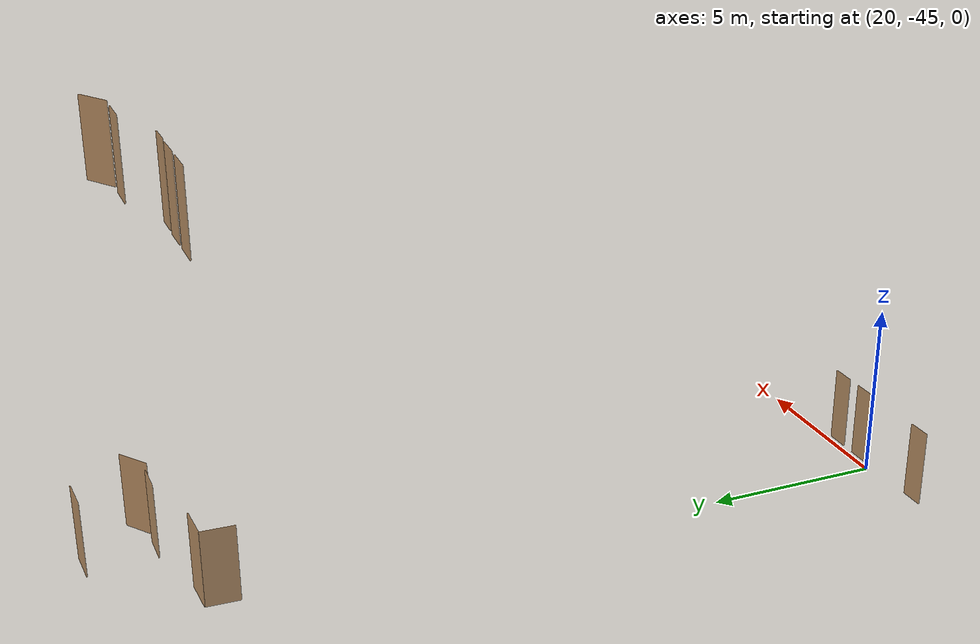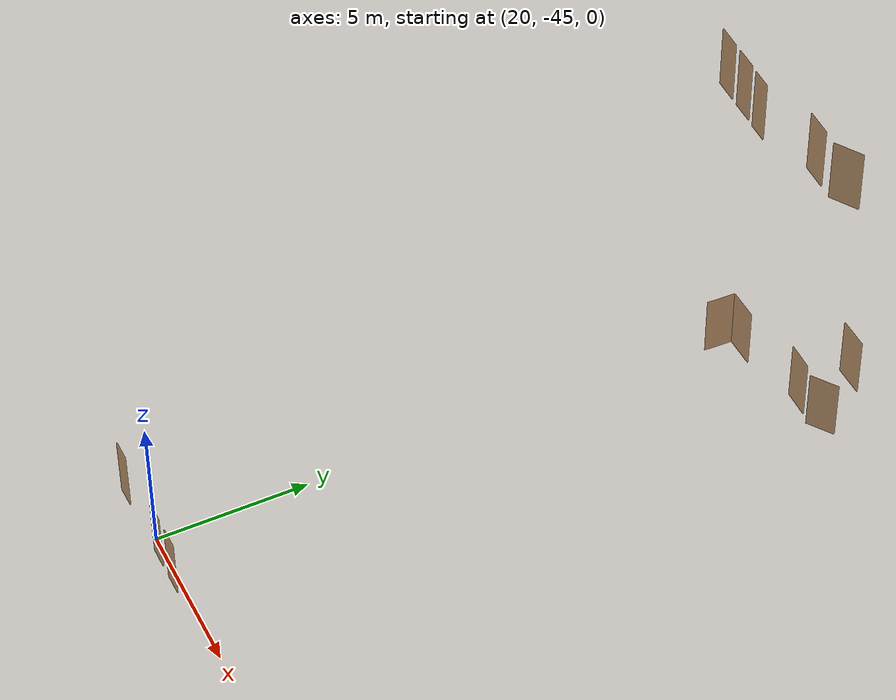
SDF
<sdf version="1.7">
 <world name="sim_world">
  <model name="part2_3">
   <pose>20.919621237898262 -25.424450441570542 0.0 0 0 -3.1088230642559003</pose>
   <link name="right">
    <pose>0 0 1.11 0 0 0</pose>
    <visual name="right_visual">
     <geometry><box><size>1.0312199456807118 0.03 2.2</size></box></geometry>
     <material>
      <ambient>0.5 0.25 0 0.6</ambient>
      <diffuse>0.5 0.25 0 0.6</diffuse>
      <pbr><metal><metalness>0.0</metalness></metal></pbr>
     </material>
    </visual>
    <collision name="right_collision">
     <geometry><box><size>1.0312199456807118 0.03 2.2</size></box></geometry>
     <surface><contact><collide_bitmask>0x02</collide_bitmask></contact></surface>
    </collision>
    <inertial>
     <mass>50.0</mass>
     <inertia><ixx>20.17041666666667</ixx><iyy>24.59756073487388</iyy><izz>4.434644068207209</izz></inertia>
    </inertial>
   </link>
   <joint name="right_joint" type="revolute">
    <parent>world</parent>
    <child>right</child>
    <axis><xyz>0 0 -1</xyz><limit><lower>0</lower><upper>1.57</upper></limit></axis>
    <pose>0.5206099728403559 0 0 0 0 0</pose>
   </joint>
   <plugin name="register_component" filename="libregister_component.so">
    <component name="Door">
     <v_max_door>0.5</v_max_door>
     <a_max_door>0.3</a_max_door>
     <a_nom_door>0.15</a_nom_door>
     <dx_min_door>0.01</dx_min_door>
     <f_max_door>500.0</f_max_door>
     <ros_interface>true</ros_interface>
     <door name="part2_3" type="SwingDoor" left_joint_name="empty_joint" right_joint_name="right_joint"/>
    </component>
   </plugin>
  </model>
  <model name="part2_2">
   <pose>20.38263480093005 -25.917791185768593 0.0 0 0 1.535839882828038</pose>
   <link name="right">
    <pose>0 0 1.11 0 0 0</pose>
    <visual name="right_visual">
     <geometry><box><size>0.9431495373669919 0.03 2.2</size></box></geometry>
     <material>
      <ambient>0.5 0.25 0 0.6</ambient>
      <diffuse>0.5 0.25 0 0.6</diffuse>
      <pbr><metal><metalness>0.0</metalness></metal></pbr>
     </material>
    </visual>
    <collision name="right_collision">
     <geometry><box><size>0.9431495373669919 0.03 2.2</size></box></geometry>
     <surface><contact><collide_bitmask>0x02</collide_bitmask></contact></surface>
    </collision>
    <inertial>
     <mass>50.0</mass>
     <inertia><ixx>20.17041666666667</ixx><iyy>23.87304604098155</iyy><izz>3.710129374314879</izz></inertia>
    </inertial>
   </link>
   <joint name="right_joint" type="revolute">
    <parent>world</parent>
    <child>right</child>
    <axis><xyz>0 0 1</xyz><limit><lower>0</lower><upper>1.57</upper></limit></axis>
    <pose>0.47657476868349596 0 0 0 0 0</pose>
   </joint>
   <plugin name="register_component" filename="libregister_component.so">
    <component name="Door">
     <v_max_door>0.5</v_max_door>
     <a_max_door>0.3</a_max_door>
     <a_nom_door>0.15</a_nom_door>
     <dx_min_door>0.01</dx_min_door>
     <f_max_door>500.0</f_max_door>
     <ros_interface>true</ros_interface>
     <door name="part2_2" type="SwingDoor" left_joint_name="empty_joint" right_joint_name="right_joint"/>
    </component>
   </plugin>
  </model>
  <model name="part2_6">
   <pose>23.62189937637335 -24.873600078663575 0.0 0 0 3.137896065827331</pose>
   <link name="right">
    <pose>0 0 1.11 0 0 0</pose>
    <visual name="right_visual">
     <geometry><box><size>0.9276185826104854 0.03 2.2</size></box></geometry>
     <material>
      <ambient>0.5 0.25 0 0.6</ambient>
      <diffuse>0.5 0.25 0 0.6</diffuse>
      <pbr><metal><metalness>0.0</metalness></metal></pbr>
     </material>
    </visual>
    <collision name="right_collision">
     <geometry><box><size>0.9276185826104854 0.03 2.2</size></box></geometry>
     <surface><contact><collide_bitmask>0x02</collide_bitmask></contact></surface>
    </collision>
    <inertial>
     <mass>50.0</mass>
     <inertia><ixx>20.17041666666667</ixx><iyy>23.751984311684527</iyy><izz>3.589067645017858</izz></inertia>
    </inertial>
   </link>
   <joint name="right_joint" type="revolute">
    <parent>world</parent>
    <child>right</child>
    <axis><xyz>0 0 1</xyz><limit><lower>0</lower><upper>1.57</upper></limit></axis>
    <pose>0.4688092913052427 0 0 0 0 0</pose>
   </joint>
   <plugin name="register_component" filename="libregister_component.so">
    <component name="Door">
     <v_max_door>0.5</v_max_door>
     <a_max_door>0.3</a_max_door>
     <a_nom_door>0.15</a_nom_door>
     <dx_min_door>0.01</dx_min_door>
     <f_max_door>500.0</f_max_door>
     <ros_interface>true</ros_interface>
     <door name="part2_6" type="SwingDoor" left_joint_name="empty_joint" right_joint_name="right_joint"/>
    </component>
   </plugin>
  </model>
  <model name="part2_5">
   <pose>23.49012789511284 -22.916034596184698 0.0 0 0 0.03134180106866015</pose>
   <link name="right">
    <pose>0 0 1.11 0 0 0</pose>
    <visual name="right_visual">
     <geometry><box><size>1.0320391962318292 0.03 2.2</size></box></geometry>
     <material>
      <ambient>0.5 0.25 0 0.6</ambient>
      <diffuse>0.5 0.25 0 0.6</diffuse>
      <pbr><metal><metalness>0.0</metalness></metal></pbr>
     </material>
    </visual>
    <collision name="right_collision">
     <geometry><box><size>1.0320391962318292 0.03 2.2</size></box></geometry>
     <surface><contact><collide_bitmask>0x02</collide_bitmask></contact></surface>
    </collision>
    <inertial>
     <mass>50.0</mass>
     <inertia><ixx>20.17041666666667</ixx><iyy>24.60460376066184</iyy><izz>4.441687093995166</izz></inertia>
    </inertial>
   </link>
   <joint name="right_joint" type="revolute">
    <parent>world</parent>
    <child>right</child>
    <axis><xyz>0 0 -1</xyz><limit><lower>0</lower><upper>1.57</upper></limit></axis>
    <pose>0.5210195981159146 0 0 0 0 0</pose>
   </joint>
   <plugin name="register_component" filename="libregister_component.so">
    <component name="Door">
     <v_max_door>0.5</v_max_door>
     <a_max_door>0.3</a_max_door>
     <a_nom_door>0.15</a_nom_door>
     <dx_min_door>0.01</dx_min_door>
     <f_max_door>500.0</f_max_door>
     <ros_interface>true</ros_interface>
     <door name="part2_5" type="SwingDoor" left_joint_name="empty_joint" right_joint_name="right_joint"/>
    </component>
   </plugin>
  </model>
  <model name="part2_7_end">
   <pose>24.838442831288784 -24.697043623681914 0.0 0 0 -2.519063830197608</pose>
   <link name="right">
    <pose>0 0 1.11 0 0 0</pose>
    <visual name="right_visual">
     <geometry><box><size>0.9834981706830346 0.03 2.2</size></box></geometry>
     <material>
      <ambient>0.5 0.25 0 0.6</ambient>
      <diffuse>0.5 0.25 0 0.6</diffuse>
      <pbr><metal><metalness>0.0</metalness></metal></pbr>
     </material>
    </visual>
    <collision name="right_collision">
     <geometry><box><size>0.9834981706830346 0.03 2.2</size></box></geometry>
     <surface><contact><collide_bitmask>0x02</collide_bitmask></contact></surface>
    </collision>
    <inertial>
     <mass>50.0</mass>
     <inertia><ixx>20.17041666666667</ixx><iyy>24.19695271557032</iyy><izz>4.034036048903648</izz></inertia>
    </inertial>
   </link>
   <joint name="right_joint" type="revolute">
    <parent>world</parent>
    <child>right</child>
    <axis><xyz>0 0 -1</xyz><limit><lower>0</lower><upper>1.57</upper></limit></axis>
    <pose>0.4967490853415173 0 0 0 0 0</pose>
   </joint>
   <plugin name="register_component" filename="libregister_component.so">
    <component name="Door">
     <v_max_door>0.5</v_max_door>
     <a_max_door>0.3</a_max_door>
     <a_nom_door>0.15</a_nom_door>
     <dx_min_door>0.01</dx_min_door>
     <f_max_door>500.0</f_max_door>
     <ros_interface>true</ros_interface>
     <door name="part2_7_end" type="SwingDoor" left_joint_name="empty_joint" right_joint_name="right_joint"/>
    </component>
   </plugin>
  </model>
  <model name="part6_3">
   <pose>21.833918270380313 -45.2030256453194 0.0 0 0 -3.141366388773305</pose>
   <link name="right">
    <pose>0 0 1.11 0 0 0</pose>
    <visual name="right_visual">
     <geometry><box><size>0.6991783408263198 0.03 2.2</size></box></geometry>
     <material>
      <ambient>0.5 0.25 0 0.6</ambient>
      <diffuse>0.5 0.25 0 0.6</diffuse>
      <pbr><metal><metalness>0.0</metalness></metal></pbr>
     </material>
    </visual>
    <collision name="right_collision">
     <geometry><box><size>0.6991783408263198 0.03 2.2</size></box></geometry>
     <surface><contact><collide_bitmask>0x02</collide_bitmask></contact></surface>
    </collision>
    <inertial>
     <mass>50.0</mass>
     <inertia><ixx>20.17041666666667</ixx><iyy>22.203543134502695</iyy><izz>2.040626467836023</izz></inertia>
    </inertial>
   </link>
   <joint name="right_joint" type="revolute">
    <parent>world</parent>
    <child>right</child>
    <axis><xyz>0 0 -1</xyz><limit><lower>0</lower><upper>1.57</upper></limit></axis>
    <pose>0.3545891704131599 0 0 0 0 0</pose>
   </joint>
   <plugin name="register_component" filename="libregister_component.so">
    <component name="Door">
     <v_max_door>0.5</v_max_door>
     <a_max_door>0.3</a_max_door>
     <a_nom_door>0.15</a_nom_door>
     <dx_min_door>0.01</dx_min_door>
     <f_max_door>500.0</f_max_door>
     <ros_interface>true</ros_interface>
     <door name="part6_3" type="SwingDoor" left_joint_name="empty_joint" right_joint_name="right_joint"/>
    </component>
   </plugin>
  </model>
  <model name="part6_1">
   <pose>18.052363985373013 -45.202496120370355 0.0 0 0 -3.1386166731971628</pose>
   <link name="right">
    <pose>0 0 1.11 0 0 0</pose>
    <visual name="right_visual">
     <geometry><box><size>0.7017328218687007 0.03 2.2</size></box></geometry>
     <material>
      <ambient>0.5 0.25 0 0.6</ambient>
      <diffuse>0.5 0.25 0 0.6</diffuse>
      <pbr><metal><metalness>0.0</metalness></metal></pbr>
     </material>
    </visual>
    <collision name="right_collision">
     <geometry><box><size>0.7017328218687007 0.03 2.2</size></box></geometry>
     <surface><contact><collide_bitmask>0x02</collide_bitmask></contact></surface>
    </collision>
    <inertial>
     <mass>50.0</mass>
     <inertia><ixx>20.17041666666667</ixx><iyy>22.218453972032545</iyy><izz>2.0555373053658736</izz></inertia>
    </inertial>
   </link>
   <joint name="right_joint" type="revolute">
    <parent>world</parent>
    <child>right</child>
    <axis><xyz>0 0 1</xyz><limit><lower>0</lower><upper>1.57</upper></limit></axis>
    <pose>0.35586641093435034 0 0 0 0 0</pose>
   </joint>
   <plugin name="register_component" filename="libregister_component.so">
    <component name="Door">
     <v_max_door>0.5</v_max_door>
     <a_max_door>0.3</a_max_door>
     <a_nom_door>0.15</a_nom_door>
     <dx_min_door>0.01</dx_min_door>
     <f_max_door>500.0</f_max_door>
     <ros_interface>true</ros_interface>
     <door name="part6_1" type="SwingDoor" left_joint_name="empty_joint" right_joint_name="right_joint"/>
    </component>
   </plugin>
  </model>
  <model name="part6_2">
   <pose>20.71829745689059 -45.20227147342227 0.0 0 0 3.139241365842667</pose>
   <link name="right">
    <pose>0 0 1.11 0 0 0</pose>
    <visual name="right_visual">
     <geometry><box><size>0.6997419019653975 0.03 2.2</size></box></geometry>
     <material>
      <ambient>0.5 0.25 0 0.6</ambient>
      <diffuse>0.5 0.25 0 0.6</diffuse>
      <pbr><metal><metalness>0.0</metalness></metal></pbr>
     </material>
    </visual>
    <collision name="right_collision">
     <geometry><box><size>0.6997419019653975 0.03 2.2</size></box></geometry>
     <surface><contact><collide_bitmask>0x02</collide_bitmask></contact></surface>
    </collision>
    <inertial>
     <mass>50.0</mass>
     <inertia><ixx>20.17041666666667</ixx><iyy>22.206828039025638</iyy><izz>2.0439113723589672</izz></inertia>
    </inertial>
   </link>
   <joint name="right_joint" type="revolute">
    <parent>world</parent>
    <child>right</child>
    <axis><xyz>0 0 1</xyz><limit><lower>0</lower><upper>1.57</upper></limit></axis>
    <pose>0.3548709509826988 0 0 0 0 0</pose>
   </joint>
   <plugin name="register_component" filename="libregister_component.so">
    <component name="Door">
     <v_max_door>0.5</v_max_door>
     <a_max_door>0.3</a_max_door>
     <a_nom_door>0.15</a_nom_door>
     <dx_min_door>0.01</dx_min_door>
     <f_max_door>500.0</f_max_door>
     <ros_interface>true</ros_interface>
     <door name="part6_2" type="SwingDoor" left_joint_name="empty_joint" right_joint_name="right_joint"/>
    </component>
   </plugin>
  </model>
  <model name="L3_part4_3">
   <pose>19.20936172403932 -25.526173642644356 10.0 0 0 -3.1397299982213305</pose>
   <link name="right">
    <pose>0 0 1.11 0 0 0</pose>
    <visual name="right_visual">
     <geometry><box><size>0.797850544528506 0.03 2.2</size></box></geometry>
     <material>
      <ambient>0.5 0.25 0 0.6</ambient>
      <diffuse>0.5 0.25 0 0.6</diffuse>
      <pbr><metal><metalness>0.0</metalness></metal></pbr>
     </material>
    </visual>
    <collision name="right_collision">
     <geometry><box><size>0.797850544528506 0.03 2.2</size></box></geometry>
     <surface><contact><collide_bitmask>0x02</collide_bitmask></contact></surface>
    </collision>
    <inertial>
     <mass>50.0</mass>
     <inertia><ixx>20.17041666666667</ixx><iyy>22.81902288085181</iyy><izz>2.65610621418514</izz></inertia>
    </inertial>
   </link>
   <joint name="right_joint" type="revolute">
    <parent>world</parent>
    <child>right</child>
    <axis><xyz>0 0 -1</xyz><limit><lower>0</lower><upper>1.57</upper></limit></axis>
    <pose>0.403925272264253 0 0 0 0 0</pose>
   </joint>
   <plugin name="register_component" filename="libregister_component.so">
    <component name="Door">
     <v_max_door>0.5</v_max_door>
     <a_max_door>0.3</a_max_door>
     <a_nom_door>0.15</a_nom_door>
     <dx_min_door>0.01</dx_min_door>
     <f_max_door>500.0</f_max_door>
     <ros_interface>true</ros_interface>
     <door name="L3_part4_3" type="SwingDoor" left_joint_name="empty_joint" right_joint_name="right_joint"/>
    </component>
   </plugin>
  </model>
  <model name="L3_part4_4">
   <pose>20.226119803899664 -25.519634807667558 10.0 0 0 -3.1275297887689684</pose>
   <link name="right">
    <pose>0 0 1.11 0 0 0</pose>
    <visual name="right_visual">
     <geometry><box><size>0.7514738226894625 0.03 2.2</size></box></geometry>
     <material>
      <ambient>0.5 0.25 0 0.6</ambient>
      <diffuse>0.5 0.25 0 0.6</diffuse>
      <pbr><metal><metalness>0.0</metalness></metal></pbr>
     </material>
    </visual>
    <collision name="right_collision">
     <geometry><box><size>0.7514738226894625 0.03 2.2</size></box></geometry>
     <surface><contact><collide_bitmask>0x02</collide_bitmask></contact></surface>
    </collision>
    <inertial>
     <mass>50.0</mass>
     <inertia><ixx>20.17041666666667</ixx><iyy>22.519637109114644</iyy><izz>2.356720442447974</izz></inertia>
    </inertial>
   </link>
   <joint name="right_joint" type="revolute">
    <parent>world</parent>
    <child>right</child>
    <axis><xyz>0 0 -1</xyz><limit><lower>0</lower><upper>1.57</upper></limit></axis>
    <pose>0.38073691134473125 0 0 0 0 0</pose>
   </joint>
   <plugin name="register_component" filename="libregister_component.so">
    <component name="Door">
     <v_max_door>0.5</v_max_door>
     <a_max_door>0.3</a_max_door>
     <a_nom_door>0.15</a_nom_door>
     <dx_min_door>0.01</dx_min_door>
     <f_max_door>500.0</f_max_door>
     <ros_interface>true</ros_interface>
     <door name="L3_part4_4" type="SwingDoor" left_joint_name="empty_joint" right_joint_name="right_joint"/>
    </component>
   </plugin>
  </model>
  <model name="L3_part4_5">
   <pose>21.184476812602426 -25.53274591081137 10.0 0 0 -3.1369163677778107</pose>
   <link name="right">
    <pose>0 0 1.11 0 0 0</pose>
    <visual name="right_visual">
     <geometry><box><size>0.6733199906694586 0.03 2.2</size></box></geometry>
     <material>
      <ambient>0.5 0.25 0 0.6</ambient>
      <diffuse>0.5 0.25 0 0.6</diffuse>
      <pbr><metal><metalness>0.0</metalness></metal></pbr>
     </material>
    </visual>
    <collision name="right_collision">
     <geometry><box><size>0.6733199906694586 0.03 2.2</size></box></geometry>
     <surface><contact><collide_bitmask>0x02</collide_bitmask></contact></surface>
    </collision>
    <inertial>
     <mass>50.0</mass>
     <inertia><ixx>20.17041666666667</ixx><iyy>22.055665874313004</iyy><izz>1.8927492076463328</izz></inertia>
    </inertial>
   </link>
   <joint name="right_joint" type="revolute">
    <parent>world</parent>
    <child>right</child>
    <axis><xyz>0 0 -1</xyz><limit><lower>0</lower><upper>1.57</upper></limit></axis>
    <pose>0.3416599953347293 0 0 0 0 0</pose>
   </joint>
   <plugin name="register_component" filename="libregister_component.so">
    <component name="Door">
     <v_max_door>0.5</v_max_door>
     <a_max_door>0.3</a_max_door>
     <a_nom_door>0.15</a_nom_door>
     <dx_min_door>0.01</dx_min_door>
     <f_max_door>500.0</f_max_door>
     <ros_interface>true</ros_interface>
     <door name="L3_part4_5" type="SwingDoor" left_joint_name="empty_joint" right_joint_name="right_joint"/>
    </component>
   </plugin>
  </model>
  <model name="L3_part4_7">
   <pose>23.521512856902014 -24.91999961272262 10.0 0 0 -3.1397299982213243</pose>
   <link name="right">
    <pose>0 0 1.11 0 0 0</pose>
    <visual name="right_visual">
     <geometry><box><size>0.8773237021729114 0.03 2.2</size></box></geometry>
     <material>
      <ambient>0.5 0.25 0 0.6</ambient>
      <diffuse>0.5 0.25 0 0.6</diffuse>
      <pbr><metal><metalness>0.0</metalness></metal></pbr>
     </material>
    </visual>
    <collision name="right_collision">
     <geometry><box><size>0.8773237021729114 0.03 2.2</size></box></geometry>
     <surface><contact><collide_bitmask>0x02</collide_bitmask></contact></surface>
    </collision>
    <inertial>
     <mass>50.0</mass>
     <inertia><ixx>20.17041666666667</ixx><iyy>23.373736993309937</iyy><izz>3.2108203266432644</izz></inertia>
    </inertial>
   </link>
   <joint name="right_joint" type="revolute">
    <parent>world</parent>
    <child>right</child>
    <axis><xyz>0 0 1</xyz><limit><lower>0</lower><upper>1.57</upper></limit></axis>
    <pose>0.4436618510864557 0 0 0 0 0</pose>
   </joint>
   <plugin name="register_component" filename="libregister_component.so">
    <component name="Door">
     <v_max_door>0.5</v_max_door>
     <a_max_door>0.3</a_max_door>
     <a_nom_door>0.15</a_nom_door>
     <dx_min_door>0.01</dx_min_door>
     <f_max_door>500.0</f_max_door>
     <ros_interface>true</ros_interface>
     <door name="L3_part4_7" type="SwingDoor" left_joint_name="empty_joint" right_joint_name="right_joint"/>
    </component>
   </plugin>
  </model>
  <model name="L3_part4_8_end">
   <pose>24.83686480703625 -24.670324441986175 10.0 0 0 0.5770746787675766</pose>
   <link name="right">
    <pose>0 0 1.11 0 0 0</pose>
    <visual name="right_visual">
     <geometry><box><size>0.9961853831016909 0.03 2.2</size></box></geometry>
     <material>
      <ambient>0.5 0.25 0 0.6</ambient>
      <diffuse>0.5 0.25 0 0.6</diffuse>
      <pbr><metal><metalness>0.0</metalness></metal></pbr>
     </material>
    </visual>
    <collision name="right_collision">
     <geometry><box><size>0.9961853831016909 0.03 2.2</size></box></geometry>
     <surface><contact><collide_bitmask>0x02</collide_bitmask></contact></surface>
    </collision>
    <inertial>
     <mass>50.0</mass>
     <inertia><ixx>20.17041666666667</ixx><iyy>24.3016054896061</iyy><izz>4.138688822939428</izz></inertia>
    </inertial>
   </link>
   <joint name="right_joint" type="revolute">
    <parent>world</parent>
    <child>right</child>
    <axis><xyz>0 0 -1</xyz><limit><lower>0</lower><upper>1.57</upper></limit></axis>
    <pose>0.5030926915508455 0 0 0 0 0</pose>
   </joint>
   <plugin name="register_component" filename="libregister_component.so">
    <component name="Door">
     <v_max_door>0.5</v_max_door>
     <a_max_door>0.3</a_max_door>
     <a_nom_door>0.15</a_nom_door>
     <dx_min_door>0.01</dx_min_door>
     <f_max_door>500.0</f_max_door>
     <ros_interface>true</ros_interface>
     <door name="L3_part4_8_end" type="SwingDoor" left_joint_name="empty_joint" right_joint_name="right_joint"/>
    </component>
   </plugin>
  </model>
 </world>
</sdf>
